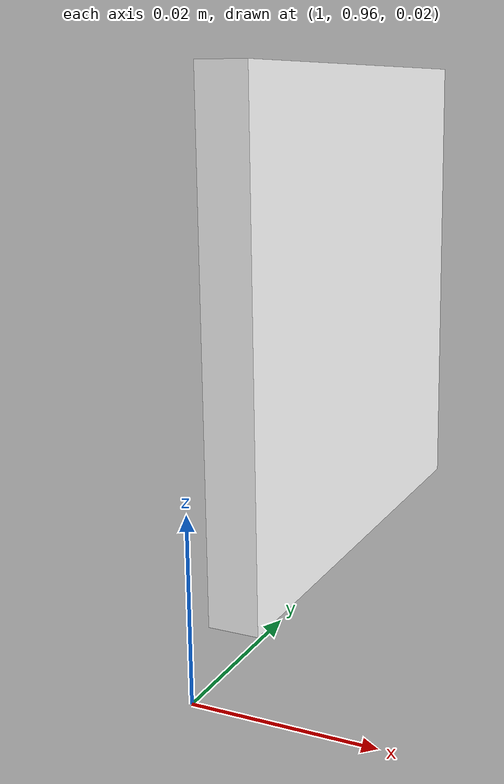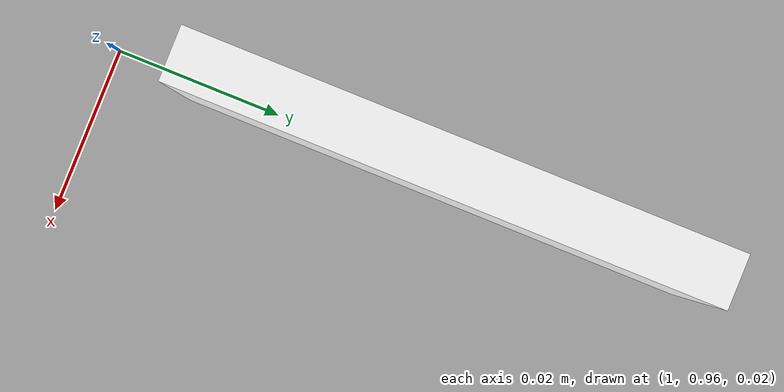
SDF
<?xml version='1.0'?>
<sdf version='1.6'>
  <model name='Aruco'>
  <link name="Aruco">
    <collision name="solido">
      <pose>1.0 1.0 0.05 0 0 3.141592</pose>
      <geometry>
        <mesh>
          <uri>model://Aruco/meshes/model.dae</uri>
          <scale>1.0 1.0 1.0</scale>
        </mesh>
      </geometry>
    </collision>

    <visual name="solido">
      <cast_shadows>true</cast_shadows>
      <pose>1.0 1.0 0.05 0 0 3.141592</pose>
      <geometry>
        <mesh>
          <uri>model://Aruco/meshes/model.dae</uri>
          <scale>1.0 1.0 1.0</scale>
        </mesh>
      </geometry>
    </visual>
  </link>
    <static>1</static>
    <allow_auto_disable>1</allow_auto_disable>
  </model>
</sdf>
